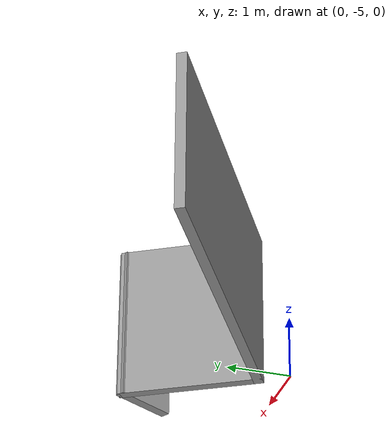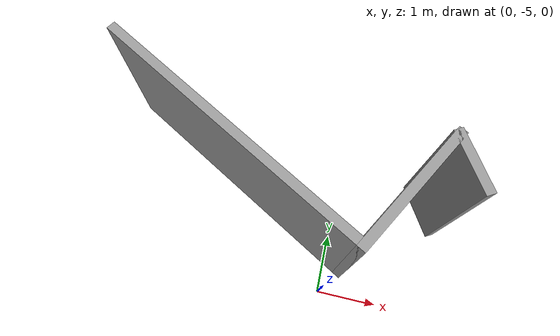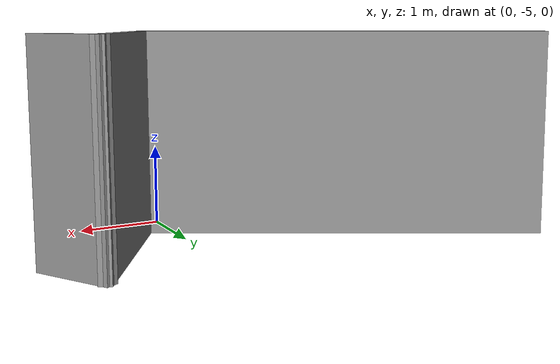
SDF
<?xml version='1.0'?>
<sdf version='1.6'>
  <model name='test'>
    <pose frame=''>-1.07239 -3.3725 0 0 -0 0</pose>
    <link name='Wall_0'>
      <collision name='Wall_0_Collision'>
        <geometry>
          <box>
            <size>5 0.15 2.5</size>
          </box>
        </geometry>
        <pose frame=''>0 0 1.25 0 -0 0</pose>
      </collision>
      <visual name='Wall_0_Visual'>
        <pose frame=''>0 0 1.25 0 -0 0</pose>
        <geometry>
          <box>
            <size>5 0.15 2.5</size>
          </box>
        </geometry>
        <material>
          <script>
            <uri>file://media/materials/scripts/gazebo.material</uri>
            <name>Gazebo/Grey</name>
          </script>
          <ambient>1 1 1 1</ambient>
        </material>
        <meta>
          <layer>0</layer>
        </meta>
      </visual>
      <pose frame=''>-0.7375 0 0 0 0 -0.523599</pose>
    </link>
    <link name='Wall_1'>
      <collision name='Wall_1_Collision'>
        <geometry>
          <box>
            <size>2.25 0.15 2.5</size>
          </box>
        </geometry>
        <pose frame=''>0 0 1.25 0 -0 0</pose>
      </collision>
      <visual name='Wall_1_Visual'>
        <pose frame=''>0 0 1.25 0 -0 0</pose>
        <geometry>
          <box>
            <size>2.25 0.15 2.5</size>
          </box>
        </geometry>
        <material>
          <script>
            <uri>file://media/materials/scripts/gazebo.material</uri>
            <name>Gazebo/Grey</name>
          </script>
          <ambient>1 1 1 1</ambient>
        </material>
        <meta>
          <layer>0</layer>
        </meta>
      </visual>
      <pose frame=''>1.88761 -0.303173 0 0 -0 1.0472</pose>
    </link>
    <link name='Wall_2'>
      <collision name='Wall_2_Collision'>
        <geometry>
          <box>
            <size>1 0.15 2.5</size>
          </box>
        </geometry>
        <pose frame=''>0 0 1.25 0 -0 0</pose>
      </collision>
      <visual name='Wall_2_Visual'>
        <pose frame=''>0 0 1.25 0 -0 0</pose>
        <geometry>
          <box>
            <size>1 0.15 2.5</size>
          </box>
        </geometry>
        <material>
          <script>
            <uri>file://media/materials/scripts/gazebo.material</uri>
            <name>Gazebo/Grey</name>
          </script>
          <ambient>1 1 1 1</ambient>
        </material>
        <meta>
          <layer>0</layer>
        </meta>
      </visual>
      <pose frame=''>2.62511 0.238093 0 0 0 -1.0472</pose>
    </link>
    <static>1</static>
  </model>
</sdf>
